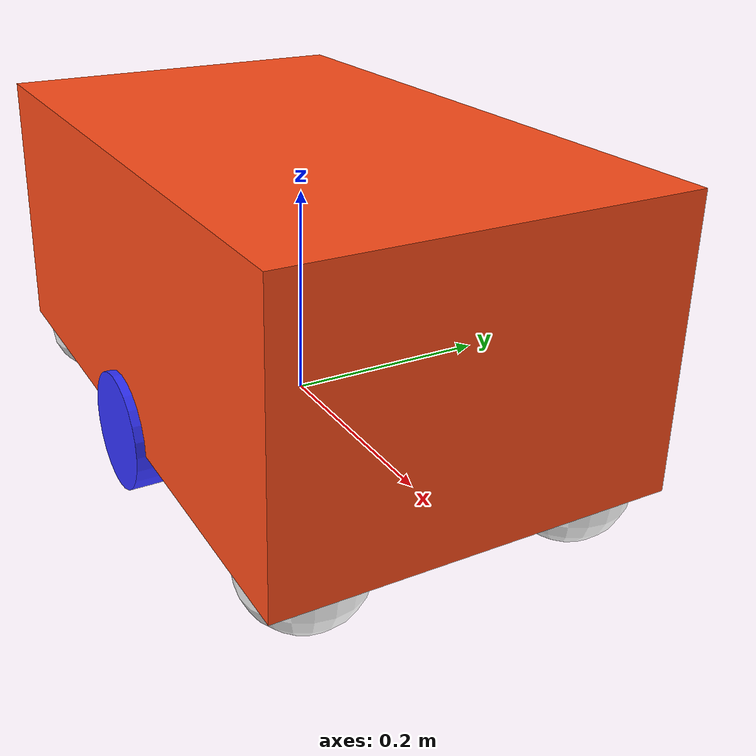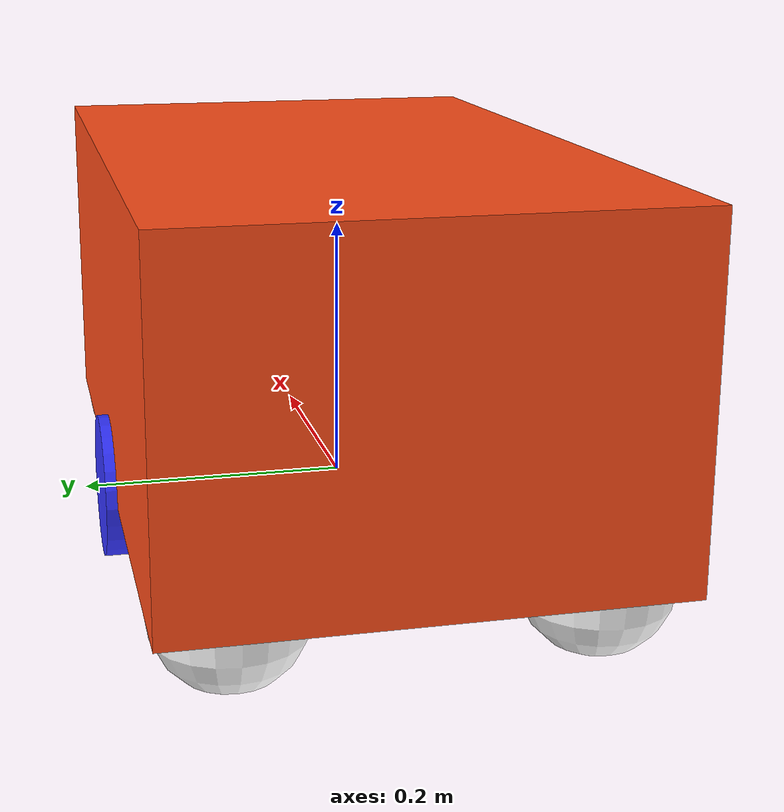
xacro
<?xml version="1.0"?>
<robot xmlns:xacro="http://www.ros.org/wiki/xacro" >

    <xacro:include filename="inertial_macros.xacro"/>

    <xacro:property name="chassis_length" value="0.6"/>
    <xacro:property name="chassis_width" value="0.36"/>
    <xacro:property name="chassis_height" value="0.26"/>
    <xacro:property name="chassis_mass" value="1.0"/>
    <xacro:property name="wheel_radius" value="0.055"/>
    <xacro:property name="wheel_thickness" value="0.08"/>
    <xacro:property name="wheel_mass" value="0.5"/>
    <xacro:property name="wheel_offset_x" value="0.226"/>
    <xacro:property name="wheel_offset_y" value="0.1485"/>
    <xacro:property name="wheel_offset_z" value="0.01"/>
    <xacro:property name="caster_wheel_radius" value="0.055"/>
    <xacro:property name="caster_wheel_mass" value="0.01"/>
    <xacro:property name="caster_wheel_offset_x" value="0.055"/>
    <xacro:property name="caster_wheel_offset_z" value="${wheel_offset_z - wheel_radius + caster_wheel_radius-0.01}"/>

    <material name="white">
        <color rgba="1 1 1 1" />
    </material>

    <material name="orange">
        <color rgba="1 0.3 0.1 1"/>
    </material>

    <material name="blue">
        <color rgba="0.2 0.2 1 1"/>
    </material>

    <material name="black">
        <color rgba="0 0 0 1"/>
    </material>

    <material name="red">
        <color rgba="1 0 0 1"/>
    </material>

    <!-- BASE LINK -->

    <link name="base_link">

    </link>

    <!-- BASE_FOOTPRINT LINK -->

    <joint name="base_footprint_joint" type="fixed">
        <parent link="base_link"/>
        <child link="base_footprint"/>
        <origin xyz="0 0 0" rpy="0 0 0"/>
    </joint>

    <link name="base_footprint">
    </link>

    <!-- CHASSIS LINK -->

    <joint name="chassis_joint" type="fixed">
        <parent link="base_link"/>
        <child link="chassis"/>
        <origin xyz="0 0 0"/>
    </joint>

    <link name="chassis">
    <visual>
        <origin xyz="0 0 ${chassis_height/2}"/>
        <geometry>
            <box size="${chassis_length} ${chassis_width} ${chassis_height}"/>
        </geometry>
        <material name="orange"/>
    </visual>
    <collision>
        <origin xyz="0 0 ${chassis_height/2}"/>
        <geometry>
            <box size="${chassis_length} ${chassis_width} ${chassis_height}"/>
        </geometry>
    </collision>
    <xacro:inertial_box mass="${chassis_mass}" x="${chassis_length}" y="${chassis_width}" z="${chassis_height}">
        <origin xyz="0 0 ${chassis_height/2}" rpy="0 0 0"/>
    </xacro:inertial_box>
    </link>

    <gazebo reference="chassis">
        <material>Gazebo/Orange</material>
    </gazebo>

    <!-- LEFT WHEEL LINK -->

    <joint name="left_wheel_joint" type="continuous">
    <parent link="base_link"/>
    <child link="left_wheel"/>
    <origin xyz="0 ${wheel_offset_y} 0" rpy="-${pi/2} 0 0" />
    <axis xyz="0 0 1"/>
    </joint>

    <link name="left_wheel">
        <visual>
            <geometry>
                <cylinder radius="${wheel_radius}" length="${wheel_thickness}"/>
            </geometry>
            <material name="blue"/>
        </visual>
        <collision>
            <geometry>
                <sphere radius="${wheel_radius}"/>
            </geometry>
        </collision>
        <xacro:inertial_cylinder mass="${wheel_mass}" length="${wheel_thickness}" radius="${wheel_radius}">
            <origin xyz="0 0 0" rpy="0 0 0"/>
        </xacro:inertial_cylinder>
    </link>

    <gazebo reference="left_wheel">
        <material>Gazebo/Blue</material>
    </gazebo>

    <!-- RIGHT WHEEL LINK -->

    <joint name="right_wheel_joint" type="continuous">
    <parent link="base_link"/>
    <child link="right_wheel"/>
    <origin xyz="0 ${-wheel_offset_y} 0" rpy="${pi/2} 0 0" />
    <axis xyz="0 0 -1"/>
    </joint>

    <link name="right_wheel">
        <visual>
            <geometry>
                <cylinder radius="${wheel_radius}" length="${wheel_thickness}"/>
            </geometry>
            <material name="blue"/>
        </visual>
        <collision>
            <geometry>
                <sphere radius="${wheel_radius}"/>
            </geometry>
        </collision>
        <xacro:inertial_cylinder mass="${wheel_mass}" length="${wheel_thickness}" radius="${wheel_radius}">
            <origin xyz="0 0 0" rpy="0 0 0"/>
        </xacro:inertial_cylinder>
    </link>

    <gazebo reference="right_wheel">
        <material>Gazebo/Blue</material>
    </gazebo>

<!-- CASTER WHEEL 1 (FRONT LEFT CORNER) -->
<joint name="caster_wheel_front_left_joint" type="fixed">
    <parent link="chassis"/>
    <child link="caster_wheel_front_left"/>
    <origin xyz="${chassis_length/2 - caster_wheel_radius} ${chassis_width/2 - caster_wheel_radius} ${caster_wheel_offset_z}"/>
</joint>

<link name="caster_wheel_front_left">
    <visual>
        <geometry>
            <sphere radius="${caster_wheel_radius}"/>
        </geometry>
        <material name="white"/>
    </visual>
    <collision>
        <geometry>
            <sphere radius="${caster_wheel_radius}"/>
        </geometry>
    </collision>
    <xacro:inertial_sphere mass="${caster_wheel_mass}" radius="${caster_wheel_radius}">
        <origin xyz="0 0 0" rpy="0 0 0"/>
    </xacro:inertial_sphere>
</link>

<gazebo reference="caster_wheel_front_left">
    <material>Gazebo/White</material>
    <mu1 value="0.001"/>
    <mu2 value="0.001"/>
</gazebo>

<!-- CASTER WHEEL 2 (FRONT RIGHT CORNER) -->
<joint name="caster_wheel_front_right_joint" type="fixed">
    <parent link="chassis"/>
    <child link="caster_wheel_front_right"/>
    <origin xyz="${chassis_length/2 - caster_wheel_radius} ${-chassis_width/2 + caster_wheel_radius} ${caster_wheel_offset_z}"/>
</joint>

<link name="caster_wheel_front_right">
    <visual>
        <geometry>
            <sphere radius="${caster_wheel_radius}"/>
        </geometry>
        <material name="white"/>
    </visual>
    <collision>
        <geometry>
            <sphere radius="${caster_wheel_radius}"/>
        </geometry>
    </collision>
    <xacro:inertial_sphere mass="${caster_wheel_mass}" radius="${caster_wheel_radius}">
        <origin xyz="0 0 0" rpy="0 0 0"/>
    </xacro:inertial_sphere>
</link>

<gazebo reference="caster_wheel_front_right">
    <material>Gazebo/White</material>
    <mu1 value="0.001"/>
    <mu2 value="0.001"/>
</gazebo>

<!-- CASTER WHEEL 3 (BACK LEFT CORNER) -->
<joint name="caster_wheel_back_left_joint" type="fixed">
    <parent link="chassis"/>
    <child link="caster_wheel_back_left"/>
    <origin xyz="${-chassis_length/2 + caster_wheel_radius} ${chassis_width/2 - caster_wheel_radius} ${caster_wheel_offset_z}"/>
</joint>

<link name="caster_wheel_back_left">
    <visual>
        <geometry>
            <sphere radius="${caster_wheel_radius}"/>
        </geometry>
        <material name="white"/>
    </visual>
    <collision>
        <geometry>
            <sphere radius="${caster_wheel_radius}"/>
        </geometry>
    </collision>
    <xacro:inertial_sphere mass="${caster_wheel_mass}" radius="${caster_wheel_radius}">
        <origin xyz="0 0 0" rpy="0 0 0"/>
    </xacro:inertial_sphere>
</link>

<gazebo reference="caster_wheel_back_left">
    <material>Gazebo/White</material>
    <mu1 value="0.001"/>
    <mu2 value="0.001"/>
</gazebo>

<!-- CASTER WHEEL 4 (BACK RIGHT CORNER) -->
<joint name="caster_wheel_back_right_joint" type="fixed">
    <parent link="chassis"/>
    <child link="caster_wheel_back_right"/>
    <origin xyz="${-chassis_length/2 + caster_wheel_radius} ${-chassis_width/2 + caster_wheel_radius} ${caster_wheel_offset_z}"/>
</joint>

<link name="caster_wheel_back_right">
    <visual>
        <geometry>
            <sphere radius="${caster_wheel_radius}"/>
        </geometry>
        <material name="white"/>
    </visual>
    <collision>
        <geometry>
            <sphere radius="${caster_wheel_radius}"/>
        </geometry>
    </collision>
    <xacro:inertial_sphere mass="${caster_wheel_mass}" radius="${caster_wheel_radius}">
        <origin xyz="0 0 0" rpy="0 0 0"/>
    </xacro:inertial_sphere>
</link>

<gazebo reference="caster_wheel_back_right">
    <material>Gazebo/White</material>
    <mu1 value="0.001"/>
    <mu2 value="0.001"/>
</gazebo>

</robot>
